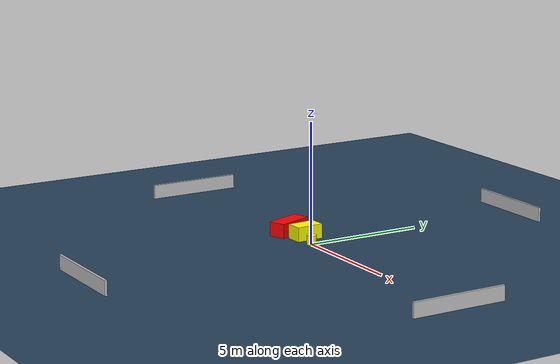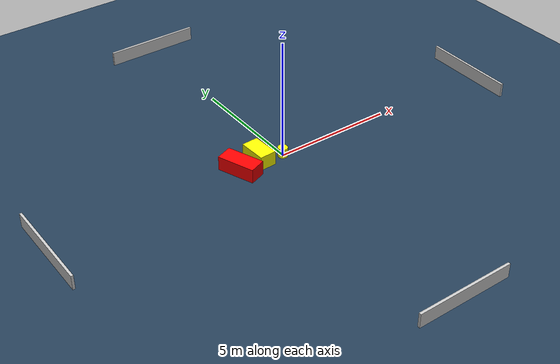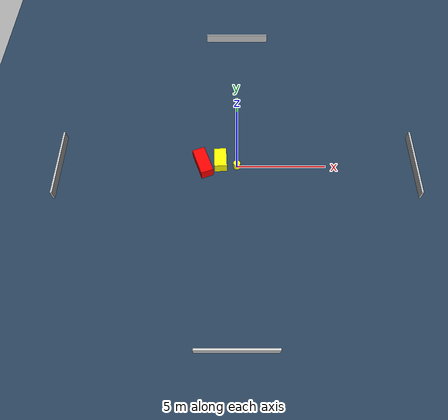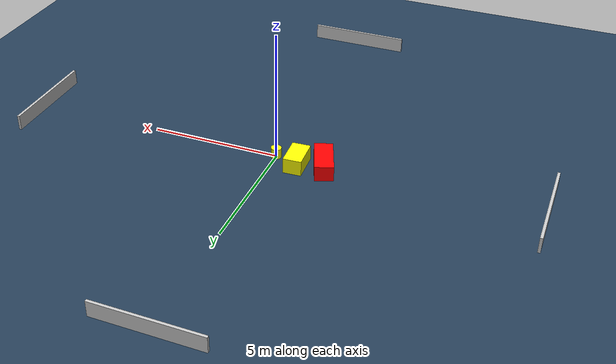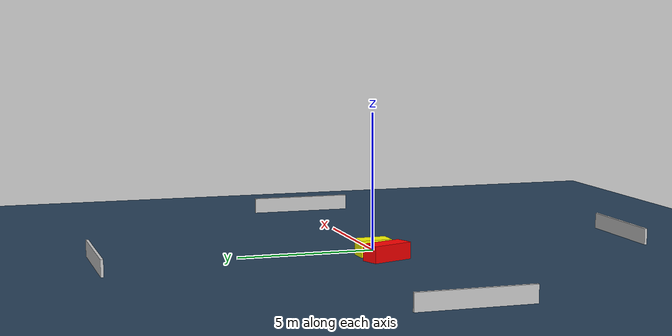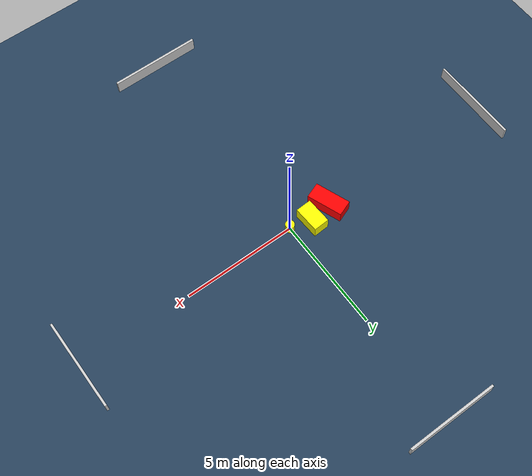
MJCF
<?xml version="1.0" ?>
<mujoco model="generated_environment">
  <option timestep="0.01" integrator="RK4" cone="elliptic"/>
  <default>
    <geom density="1"/>
  </default>
  <asset>
    <texture builtin="gradient" height="3072" name="skybox" rgb1="0.3 0.5 0.7" rgb2="0 0 0" type="skybox" width="512"/>
    <texture builtin="checker" height="300" name="groundplane" rgb1="0.2 0.3 0.4" rgb2="0.1 0.2 0.3" type="2d" width="300"/>
    <material name="groundplane" reflectance="0.2" texrepeat="5 5" texture="groundplane"/>
  </asset>
  <worldbody>
    <light dir="0 0 -1" directional="true" pos="0 0 1.5"/>
    <geom condim="3" friction="0.5 0.005 0.001" material="groundplane" name="floor" pos="0 0 0" size="0 0 0.05" type="plane"/>
    <body name="walls">
      <geom name="wall_1" condim="4" pos="-10.0 0.0 0.3" rgba="0.800000011920929 0.800000011920929 0.800000011920929 1.0" size="0.05 2.0 0.3" type="box"/>
      <geom name="wall_2" condim="4" pos="10.0 0.0 0.3" rgba="0.800000011920929 0.800000011920929 0.800000011920929 1.0" size="0.05 2.0 0.3" type="box"/>
      <geom name="wall_3" condim="4" pos="0.0 -10.0 0.3" rgba="0.800000011920929 0.800000011920929 0.800000011920929 1.0" size="2.0 0.05 0.3" type="box"/>
      <geom name="wall_4" condim="4" pos="0.0 10.0 0.3" rgba="0.800000011920929 0.800000011920929 0.800000011920929 1.0" size="2.0 0.05 0.3" type="box"/>
    </body>
    <body name="robot">
      <joint name="joint_x" type="slide" pos="0 0 0" axis="1 0 0"/>
      <joint name="joint_y" type="slide" pos="0 0 0" axis="0 1 0"/>
      <geom name="robot" type="cylinder" pos="0.0 0.0 0.2" size="0.2 0.2 0.0" mass="5.0" friction="1.0 0.005 0.0001" condim="4" rgba="1.0 1.0 0.0 1.0"/>
    </body>
    <body name="obstacle_1_movable">
      <geom name="obstacle_1_movable" condim="4" pos="-0.9299329163198645 0.2870274773071404 0.3" euler="0 0 92.89147278029687" friction="0.0 0.005 0.001" rgba="1.0 1.0 0.0 1.0" size="0.5809683440343082 0.3485678417950424 0.3" type="box" mass="0.1"/>
      <joint type="free"/>
    </body>
    <body name="obstacle_2_static">
      <geom name="obstacle_2_static" condim="4" pos="-1.9108343909299361 0.09873246011478425 0.3" euler="0 0 290.5754030763004" friction="0.0 0.005 0.001" rgba="1.0 0.0 0.0 1.0" size="0.7905496872784616 0.3529280873555558 0.3" type="box"/>
    </body>
  </worldbody>
  <actuator>
    <motor name="actuator_x" joint="joint_x" gear="1" ctrlrange="-1 1"/>
    <motor name="actuator_y" joint="joint_y" gear="1" ctrlrange="-1 1"/>
  </actuator>
</mujoco>
